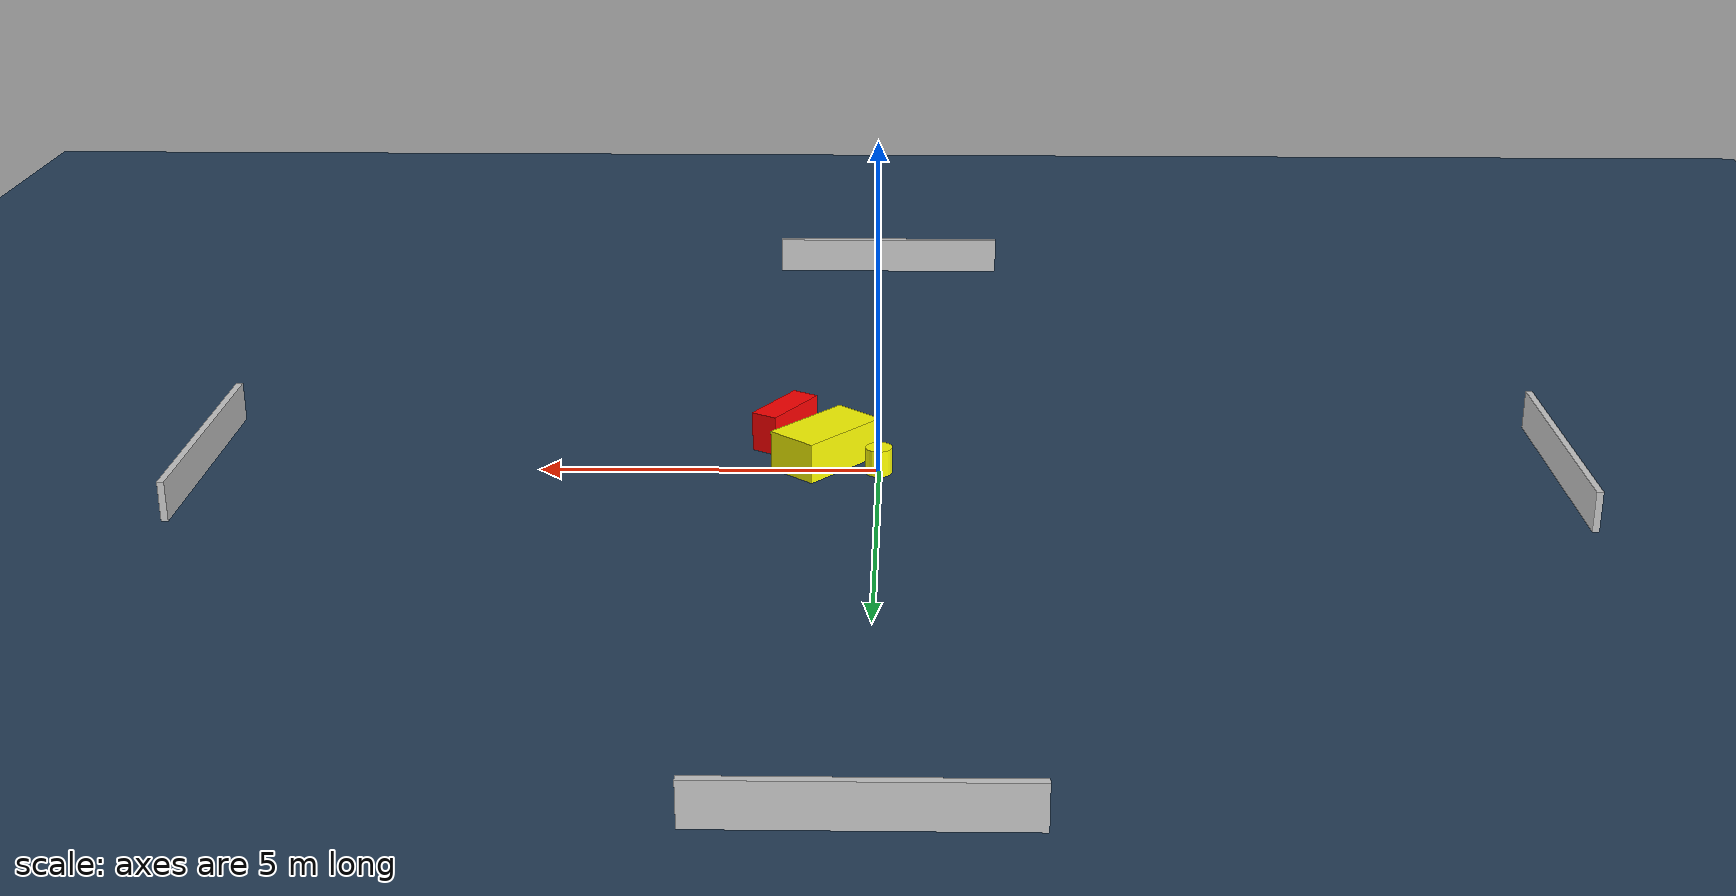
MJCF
<?xml version="1.0" ?>
<mujoco model="generated_environment">
  <option timestep="0.01" integrator="RK4" cone="elliptic"/>
  <default>
    <geom density="1"/>
  </default>
  <asset>
    <texture builtin="gradient" height="3072" name="skybox" rgb1="0.3 0.5 0.7" rgb2="0 0 0" type="skybox" width="512"/>
    <texture builtin="checker" height="300" name="groundplane" rgb1="0.2 0.3 0.4" rgb2="0.1 0.2 0.3" type="2d" width="300"/>
    <material name="groundplane" reflectance="0.2" texrepeat="5 5" texture="groundplane"/>
  </asset>
  <worldbody>
    <light dir="0 0 -1" directional="true" pos="0 0 1.5"/>
    <geom condim="3" friction="0.5 0.005 0.001" material="groundplane" name="floor" pos="0 0 0" size="0 0 0.05" type="plane"/>
    <body name="walls">
      <geom name="wall_1" condim="4" pos="-10.0 0.0 0.3" rgba="0.800000011920929 0.800000011920929 0.800000011920929 1.0" size="0.05 2.0 0.3" type="box"/>
      <geom name="wall_2" condim="4" pos="10.0 0.0 0.3" rgba="0.800000011920929 0.800000011920929 0.800000011920929 1.0" size="0.05 2.0 0.3" type="box"/>
      <geom name="wall_3" condim="4" pos="0.0 -10.0 0.3" rgba="0.800000011920929 0.800000011920929 0.800000011920929 1.0" size="2.0 0.05 0.3" type="box"/>
      <geom name="wall_4" condim="4" pos="0.0 10.0 0.3" rgba="0.800000011920929 0.800000011920929 0.800000011920929 1.0" size="2.0 0.05 0.3" type="box"/>
    </body>
    <body name="robot">
      <joint name="joint_x" type="slide" pos="0 0 0" axis="1 0 0"/>
      <joint name="joint_y" type="slide" pos="0 0 0" axis="0 1 0"/>
      <geom name="robot" type="cylinder" pos="0.0 0.0 0.2" size="0.2 0.2 0.0" mass="5.0" friction="1.0 0.005 0.0001" condim="4" rgba="1.0 1.0 0.0 1.0"/>
    </body>
    <body name="obstacle_1_movable">
      <geom name="obstacle_1_movable" condim="4" pos="0.7969347395300939 -0.37765240966320407 0.3" euler="0 0 48.646941883692946" friction="0.0 0.005 0.001" rgba="1.0 1.0 0.0 1.0" size="0.7408840812901683 0.4155808795664062 0.3" type="box" mass="0.1"/>
      <joint type="free"/>
    </body>
    <body name="obstacle_2_static">
      <geom name="obstacle_2_static" condim="4" pos="1.4524402569719685 -1.2392439417597556 0.3" euler="0 0 239.02670805647648" friction="0.0 0.005 0.001" rgba="1.0 0.0 0.0 1.0" size="0.5664978667679818 0.20973190227547808 0.3" type="box"/>
    </body>
  </worldbody>
  <actuator>
    <motor name="actuator_x" joint="joint_x" gear="1" ctrlrange="-1 1"/>
    <motor name="actuator_y" joint="joint_y" gear="1" ctrlrange="-1 1"/>
  </actuator>
</mujoco>
